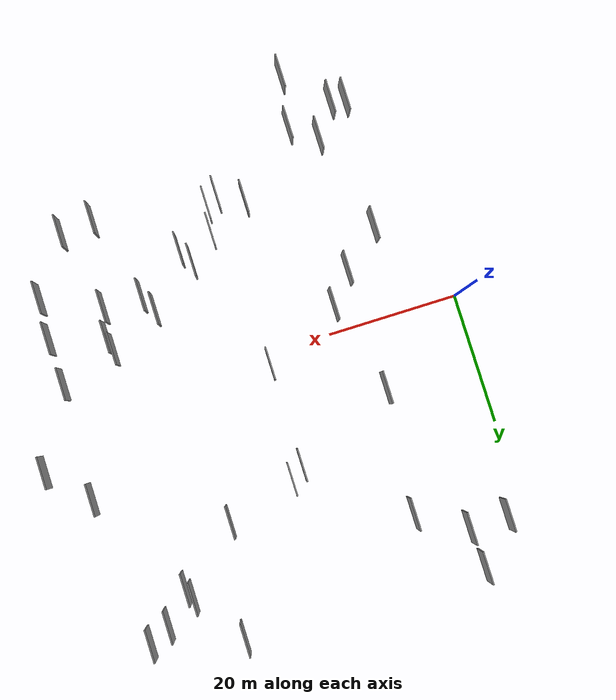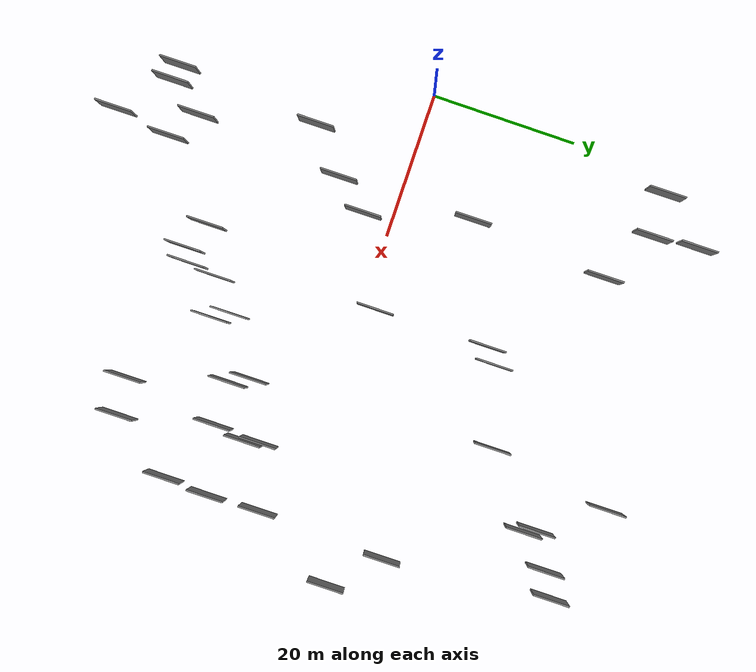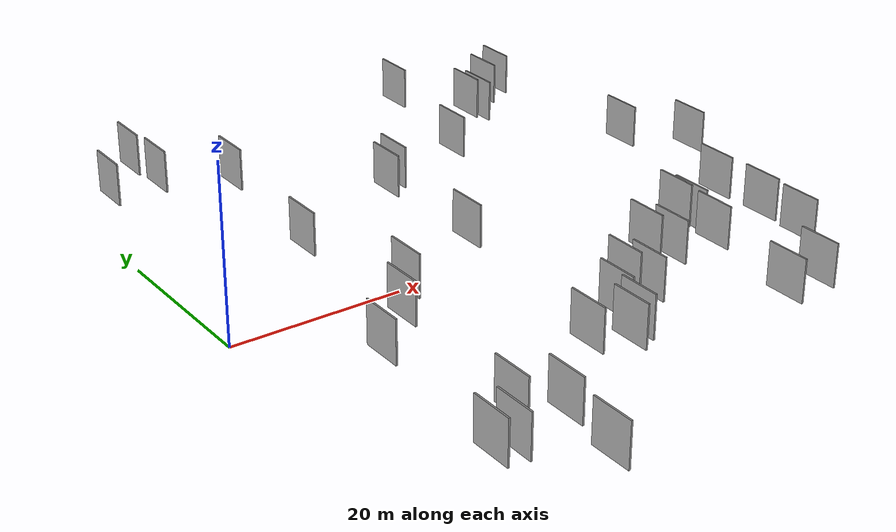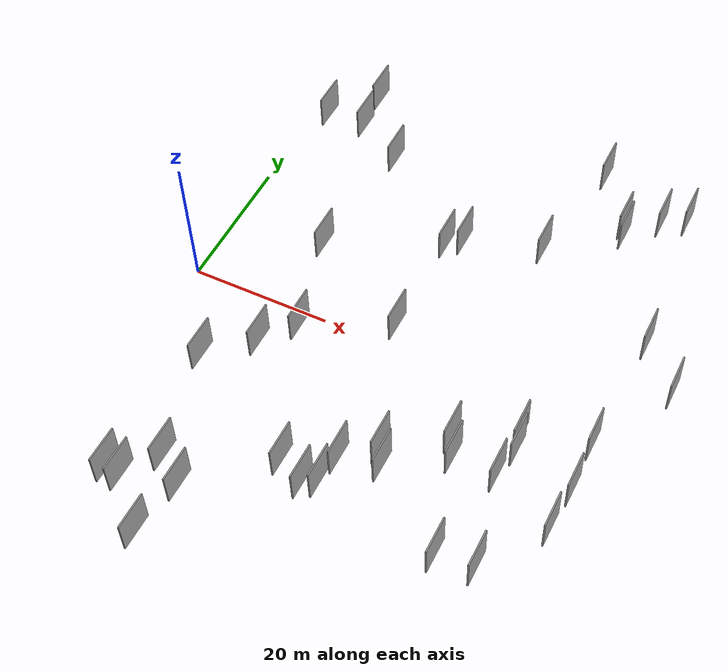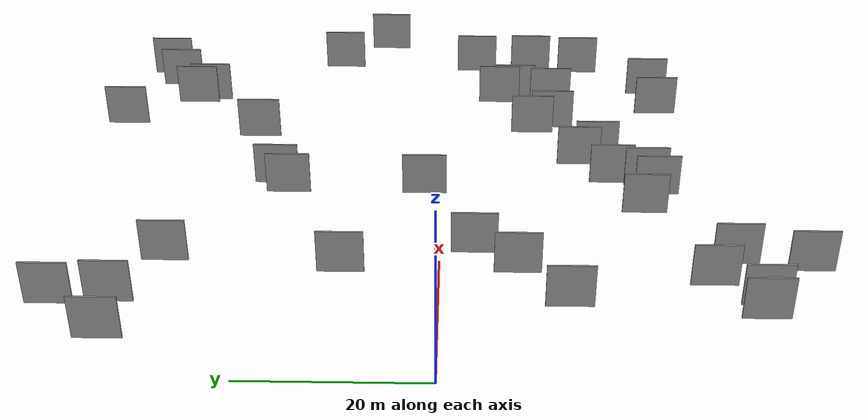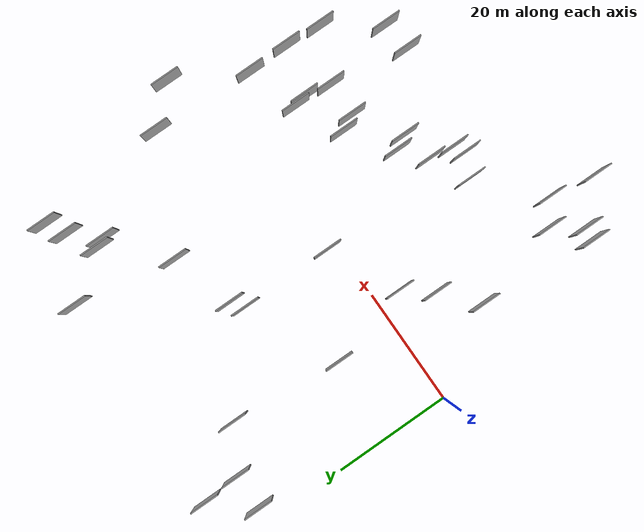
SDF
<sdf version="1.6">
 <world name="default">
  <scene>
   <sky><clouds><speed>12</speed></clouds></sky>
   <ambient>0.4 0.4 0.4 1</ambient>
   <background>0.7 0.7 0.7 1</background>
   <shadows>1</shadows>
  </scene>
  <gravity>0 0 -9.8066</gravity>
  <magnetic_field>6e-06 2.3e-05 -4.2e-05</magnetic_field>
  <physics default="0" name="default_physics" type="ode">
   <ode>
    <solver>
     <type>quick</type>
     <iters>10</iters>
     <sor>1.0</sor>
     <use_dynamic_moi_rescaling>0</use_dynamic_moi_rescaling>
    </solver>
    <constraints>
     <cfm>0</cfm>
     <erp>0.2</erp>
     <contact_max_correcting_vel>100</contact_max_correcting_vel>
     <contact_surface_layer>0.001</contact_surface_layer>
    </constraints>
   </ode>
   <max_step_size>0.004</max_step_size>
   <real_time_factor>1</real_time_factor>
   <real_time_update_rate>250</real_time_update_rate>
  </physics>
  <light name="sun" type="directional">
   <pose>0 0 10 0 0 0</pose>
   <diffuse>0.8 0.8 0.8 1</diffuse>
   <specular>0.2 0.2 0.2 1</specular>
   <attenuation>
    <range>1000</range>
    <constant>0.9</constant>
    <linear>0.01</linear>
    <quadratic>0.001</quadratic>
   </attenuation>
   <direction>-0.5 0.1 -0.9</direction>
  </light>
  <model name="grey_wall_1">
   <static>1</static>
   <pose>26.3463 -22.8614 2.5 0.000000 0.000000 1.570796</pose>
   <link name="link">
    <pose>0 0 2.50 0 0 0</pose>
    <collision name="collision"><geometry><box><size>5.00 0.2 5.00</size></box></geometry></collision>
    <visual name="visual">
     <cast_shadows>0</cast_shadows>
     <geometry><box><size>5.00 0.2 5.00</size></box></geometry>
     <material>
      <script>
       <uri>model://grey_wall/materials/scripts</uri>
       <uri>model://grey_wall/materials/textures</uri>
       <name>vrc/grey_wall</name>
      </script>
     </material>
    </visual>
   </link>
  </model>
  <model name="grey_wall_2">
   <static>1</static>
   <pose>45.1819 -13.5041 2.5 0.000000 0.000000 1.570796</pose>
   <link name="link">
    <pose>0 0 2.50 0 0 0</pose>
    <collision name="collision"><geometry><box><size>5.00 0.2 5.00</size></box></geometry></collision>
    <visual name="visual">
     <cast_shadows>0</cast_shadows>
     <geometry><box><size>5.00 0.2 5.00</size></box></geometry>
     <material>
      <script>
       <uri>model://grey_wall/materials/scripts</uri>
       <uri>model://grey_wall/materials/textures</uri>
       <name>vrc/grey_wall</name>
      </script>
     </material>
    </visual>
   </link>
  </model>
  <model name="grey_wall_3">
   <static>1</static>
   <pose>16.3982 29.0219 2.5 0.000000 0.000000 1.570796</pose>
   <link name="link">
    <pose>0 0 2.50 0 0 0</pose>
    <collision name="collision"><geometry><box><size>5.00 0.2 5.00</size></box></geometry></collision>
    <visual name="visual">
     <cast_shadows>0</cast_shadows>
     <geometry><box><size>5.00 0.2 5.00</size></box></geometry>
     <material>
      <script>
       <uri>model://grey_wall/materials/scripts</uri>
       <uri>model://grey_wall/materials/textures</uri>
       <name>vrc/grey_wall</name>
      </script>
     </material>
    </visual>
   </link>
  </model>
  <model name="grey_wall_4">
   <static>1</static>
   <pose>51.0853 -13.5674 2.5 0.000000 0.000000 1.570796</pose>
   <link name="link">
    <pose>0 0 2.50 0 0 0</pose>
    <collision name="collision"><geometry><box><size>5.00 0.2 5.00</size></box></geometry></collision>
    <visual name="visual">
     <cast_shadows>0</cast_shadows>
     <geometry><box><size>5.00 0.2 5.00</size></box></geometry>
     <material>
      <script>
       <uri>model://grey_wall/materials/scripts</uri>
       <uri>model://grey_wall/materials/textures</uri>
       <name>vrc/grey_wall</name>
      </script>
     </material>
    </visual>
   </link>
  </model>
  <model name="grey_wall_5">
   <static>1</static>
   <pose>66.3828 7.2035 2.5 0.000000 0.000000 1.570796</pose>
   <link name="link">
    <pose>0 0 2.50 0 0 0</pose>
    <collision name="collision"><geometry><box><size>5.00 0.2 5.00</size></box></geometry></collision>
    <visual name="visual">
     <cast_shadows>0</cast_shadows>
     <geometry><box><size>5.00 0.2 5.00</size></box></geometry>
     <material>
      <script>
       <uri>model://grey_wall/materials/scripts</uri>
       <uri>model://grey_wall/materials/textures</uri>
       <name>vrc/grey_wall</name>
      </script>
     </material>
    </visual>
   </link>
  </model>
  <model name="grey_wall_6">
   <static>1</static>
   <pose>31.9685 -23.6078 2.5 0.000000 0.000000 1.570796</pose>
   <link name="link">
    <pose>0 0 2.50 0 0 0</pose>
    <collision name="collision"><geometry><box><size>5.00 0.2 5.00</size></box></geometry></collision>
    <visual name="visual">
     <cast_shadows>0</cast_shadows>
     <geometry><box><size>5.00 0.2 5.00</size></box></geometry>
     <material>
      <script>
       <uri>model://grey_wall/materials/scripts</uri>
       <uri>model://grey_wall/materials/textures</uri>
       <name>vrc/grey_wall</name>
      </script>
     </material>
    </visual>
   </link>
  </model>
  <model name="grey_wall_7">
   <static>1</static>
   <pose>15.6620 -39.1368 2.5 0.000000 0.000000 1.570796</pose>
   <link name="link">
    <pose>0 0 2.50 0 0 0</pose>
    <collision name="collision"><geometry><box><size>5.00 0.2 5.00</size></box></geometry></collision>
    <visual name="visual">
     <cast_shadows>0</cast_shadows>
     <geometry><box><size>5.00 0.2 5.00</size></box></geometry>
     <material>
      <script>
       <uri>model://grey_wall/materials/scripts</uri>
       <uri>model://grey_wall/materials/textures</uri>
       <name>vrc/grey_wall</name>
      </script>
     </material>
    </visual>
   </link>
  </model>
  <model name="grey_wall_8">
   <static>1</static>
   <pose>59.7446 -17.5631 2.5 0.000000 0.000000 1.570796</pose>
   <link name="link">
    <pose>0 0 2.50 0 0 0</pose>
    <collision name="collision"><geometry><box><size>5.00 0.2 5.00</size></box></geometry></collision>
    <visual name="visual">
     <cast_shadows>0</cast_shadows>
     <geometry><box><size>5.00 0.2 5.00</size></box></geometry>
     <material>
      <script>
       <uri>model://grey_wall/materials/scripts</uri>
       <uri>model://grey_wall/materials/textures</uri>
       <name>vrc/grey_wall</name>
      </script>
     </material>
    </visual>
   </link>
  </model>
  <model name="grey_wall_9">
   <static>1</static>
   <pose>29.9235 17.3483 2.5 0.000000 0.000000 1.570796</pose>
   <link name="link">
    <pose>0 0 2.50 0 0 0</pose>
    <collision name="collision"><geometry><box><size>5.00 0.2 5.00</size></box></geometry></collision>
    <visual name="visual">
     <cast_shadows>0</cast_shadows>
     <geometry><box><size>5.00 0.2 5.00</size></box></geometry>
     <material>
      <script>
       <uri>model://grey_wall/materials/scripts</uri>
       <uri>model://grey_wall/materials/textures</uri>
       <name>vrc/grey_wall</name>
      </script>
     </material>
    </visual>
   </link>
  </model>
  <model name="grey_wall_10">
   <static>1</static>
   <pose>60.0062 -4.3715 2.5 0.000000 0.000000 1.570796</pose>
   <link name="link">
    <pose>0 0 2.50 0 0 0</pose>
    <collision name="collision"><geometry><box><size>5.00 0.2 5.00</size></box></geometry></collision>
    <visual name="visual">
     <cast_shadows>0</cast_shadows>
     <geometry><box><size>5.00 0.2 5.00</size></box></geometry>
     <material>
      <script>
       <uri>model://grey_wall/materials/scripts</uri>
       <uri>model://grey_wall/materials/textures</uri>
       <name>vrc/grey_wall</name>
      </script>
     </material>
    </visual>
   </link>
  </model>
  <model name="grey_wall_11">
   <static>1</static>
   <pose>50.7910 31.0676 2.5 0.000000 0.000000 1.570796</pose>
   <link name="link">
    <pose>0 0 2.50 0 0 0</pose>
    <collision name="collision"><geometry><box><size>5.00 0.2 5.00</size></box></geometry></collision>
    <visual name="visual">
     <cast_shadows>0</cast_shadows>
     <geometry><box><size>5.00 0.2 5.00</size></box></geometry>
     <material>
      <script>
       <uri>model://grey_wall/materials/scripts</uri>
       <uri>model://grey_wall/materials/textures</uri>
       <name>vrc/grey_wall</name>
      </script>
     </material>
    </visual>
   </link>
  </model>
  <model name="grey_wall_12">
   <static>1</static>
   <pose>45.3002 38.9370 2.5 0.000000 0.000000 1.570796</pose>
   <link name="link">
    <pose>0 0 2.50 0 0 0</pose>
    <collision name="collision"><geometry><box><size>5.00 0.2 5.00</size></box></geometry></collision>
    <visual name="visual">
     <cast_shadows>0</cast_shadows>
     <geometry><box><size>5.00 0.2 5.00</size></box></geometry>
     <material>
      <script>
       <uri>model://grey_wall/materials/scripts</uri>
       <uri>model://grey_wall/materials/textures</uri>
       <name>vrc/grey_wall</name>
      </script>
     </material>
    </visual>
   </link>
  </model>
  <model name="grey_wall_13">
   <static>1</static>
   <pose>14.6495 10.2471 2.5 0.000000 0.000000 1.570796</pose>
   <link name="link">
    <pose>0 0 2.50 0 0 0</pose>
    <collision name="collision"><geometry><box><size>5.00 0.2 5.00</size></box></geometry></collision>
    <visual name="visual">
     <cast_shadows>0</cast_shadows>
     <geometry><box><size>5.00 0.2 5.00</size></box></geometry>
     <material>
      <script>
       <uri>model://grey_wall/materials/scripts</uri>
       <uri>model://grey_wall/materials/textures</uri>
       <name>vrc/grey_wall</name>
      </script>
     </material>
    </visual>
   </link>
  </model>
  <model name="grey_wall_14">
   <static>1</static>
   <pose>48.8698 -26.5970 2.5 0.000000 0.000000 1.570796</pose>
   <link name="link">
    <pose>0 0 2.50 0 0 0</pose>
    <collision name="collision"><geometry><box><size>5.00 0.2 5.00</size></box></geometry></collision>
    <visual name="visual">
     <cast_shadows>0</cast_shadows>
     <geometry><box><size>5.00 0.2 5.00</size></box></geometry>
     <material>
      <script>
       <uri>model://grey_wall/materials/scripts</uri>
       <uri>model://grey_wall/materials/textures</uri>
       <name>vrc/grey_wall</name>
      </script>
     </material>
    </visual>
   </link>
  </model>
  <model name="grey_wall_15">
   <static>1</static>
   <pose>12.9881 -28.6049 2.5 0.000000 0.000000 1.570796</pose>
   <link name="link">
    <pose>0 0 2.50 0 0 0</pose>
    <collision name="collision"><geometry><box><size>5.00 0.2 5.00</size></box></geometry></collision>
    <visual name="visual">
     <cast_shadows>0</cast_shadows>
     <geometry><box><size>5.00 0.2 5.00</size></box></geometry>
     <material>
      <script>
       <uri>model://grey_wall/materials/scripts</uri>
       <uri>model://grey_wall/materials/textures</uri>
       <name>vrc/grey_wall</name>
      </script>
     </material>
    </visual>
   </link>
  </model>
  <model name="grey_wall_16">
   <static>1</static>
   <pose>9.2071 33.3859 2.5 0.000000 0.000000 1.570796</pose>
   <link name="link">
    <pose>0 0 2.50 0 0 0</pose>
    <collision name="collision"><geometry><box><size>5.00 0.2 5.00</size></box></geometry></collision>
    <visual name="visual">
     <cast_shadows>0</cast_shadows>
     <geometry><box><size>5.00 0.2 5.00</size></box></geometry>
     <material>
      <script>
       <uri>model://grey_wall/materials/scripts</uri>
       <uri>model://grey_wall/materials/textures</uri>
       <name>vrc/grey_wall</name>
      </script>
     </material>
    </visual>
   </link>
  </model>
  <model name="grey_wall_17">
   <static>1</static>
   <pose>60.1707 -11.4295 2.5 0.000000 0.000000 1.570796</pose>
   <link name="link">
    <pose>0 0 2.50 0 0 0</pose>
    <collision name="collision"><geometry><box><size>5.00 0.2 5.00</size></box></geometry></collision>
    <visual name="visual">
     <cast_shadows>0</cast_shadows>
     <geometry><box><size>5.00 0.2 5.00</size></box></geometry>
     <material>
      <script>
       <uri>model://grey_wall/materials/scripts</uri>
       <uri>model://grey_wall/materials/textures</uri>
       <name>vrc/grey_wall</name>
      </script>
     </material>
    </visual>
   </link>
  </model>
  <model name="grey_wall_18">
   <static>1</static>
   <pose>9.1684 -13.4231 2.5 0.000000 0.000000 1.570796</pose>
   <link name="link">
    <pose>0 0 2.50 0 0 0</pose>
    <collision name="collision"><geometry><box><size>5.00 0.2 5.00</size></box></geometry></collision>
    <visual name="visual">
     <cast_shadows>0</cast_shadows>
     <geometry><box><size>5.00 0.2 5.00</size></box></geometry>
     <material>
      <script>
       <uri>model://grey_wall/materials/scripts</uri>
       <uri>model://grey_wall/materials/textures</uri>
       <name>vrc/grey_wall</name>
      </script>
     </material>
    </visual>
   </link>
  </model>
  <model name="grey_wall_19">
   <static>1</static>
   <pose>7.5199 -32.9563 2.5 0.000000 0.000000 1.570796</pose>
   <link name="link">
    <pose>0 0 2.50 0 0 0</pose>
    <collision name="collision"><geometry><box><size>5.00 0.2 5.00</size></box></geometry></collision>
    <visual name="visual">
     <cast_shadows>0</cast_shadows>
     <geometry><box><size>5.00 0.2 5.00</size></box></geometry>
     <material>
      <script>
       <uri>model://grey_wall/materials/scripts</uri>
       <uri>model://grey_wall/materials/textures</uri>
       <name>vrc/grey_wall</name>
      </script>
     </material>
    </visual>
   </link>
  </model>
  <model name="grey_wall_20">
   <static>1</static>
   <pose>51.4443 -7.1435 2.5 0.000000 0.000000 1.570796</pose>
   <link name="link">
    <pose>0 0 2.50 0 0 0</pose>
    <collision name="collision"><geometry><box><size>5.00 0.2 5.00</size></box></geometry></collision>
    <visual name="visual">
     <cast_shadows>0</cast_shadows>
     <geometry><box><size>5.00 0.2 5.00</size></box></geometry>
     <material>
      <script>
       <uri>model://grey_wall/materials/scripts</uri>
       <uri>model://grey_wall/materials/textures</uri>
       <name>vrc/grey_wall</name>
      </script>
     </material>
    </visual>
   </link>
  </model>
  <model name="grey_wall_21">
   <static>1</static>
   <pose>37.8477 -18.3822 2.5 0.000000 0.000000 1.570796</pose>
   <link name="link">
    <pose>0 0 2.50 0 0 0</pose>
    <collision name="collision"><geometry><box><size>5.00 0.2 5.00</size></box></geometry></collision>
    <visual name="visual">
     <cast_shadows>0</cast_shadows>
     <geometry><box><size>5.00 0.2 5.00</size></box></geometry>
     <material>
      <script>
       <uri>model://grey_wall/materials/scripts</uri>
       <uri>model://grey_wall/materials/textures</uri>
       <name>vrc/grey_wall</name>
      </script>
     </material>
    </visual>
   </link>
  </model>
  <model name="grey_wall_22">
   <static>1</static>
   <pose>51.4952 29.5075 2.5 0.000000 0.000000 1.570796</pose>
   <link name="link">
    <pose>0 0 2.50 0 0 0</pose>
    <collision name="collision"><geometry><box><size>5.00 0.2 5.00</size></box></geometry></collision>
    <visual name="visual">
     <cast_shadows>0</cast_shadows>
     <geometry><box><size>5.00 0.2 5.00</size></box></geometry>
     <material>
      <script>
       <uri>model://grey_wall/materials/scripts</uri>
       <uri>model://grey_wall/materials/textures</uri>
       <name>vrc/grey_wall</name>
      </script>
     </material>
    </visual>
   </link>
  </model>
  <model name="grey_wall_23">
   <static>1</static>
   <pose>14.8369 -8.3337 2.5 0.000000 0.000000 1.570796</pose>
   <link name="link">
    <pose>0 0 2.50 0 0 0</pose>
    <collision name="collision"><geometry><box><size>5.00 0.2 5.00</size></box></geometry></collision>
    <visual name="visual">
     <cast_shadows>0</cast_shadows>
     <geometry><box><size>5.00 0.2 5.00</size></box></geometry>
     <material>
      <script>
       <uri>model://grey_wall/materials/scripts</uri>
       <uri>model://grey_wall/materials/textures</uri>
       <name>vrc/grey_wall</name>
      </script>
     </material>
    </visual>
   </link>
  </model>
  <model name="grey_wall_24">
   <static>1</static>
   <pose>29.9625 1.8071 2.5 0.000000 0.000000 1.570796</pose>
   <link name="link">
    <pose>0 0 2.50 0 0 0</pose>
    <collision name="collision"><geometry><box><size>5.00 0.2 5.00</size></box></geometry></collision>
    <visual name="visual">
     <cast_shadows>0</cast_shadows>
     <geometry><box><size>5.00 0.2 5.00</size></box></geometry>
     <material>
      <script>
       <uri>model://grey_wall/materials/scripts</uri>
       <uri>model://grey_wall/materials/textures</uri>
       <name>vrc/grey_wall</name>
      </script>
     </material>
    </visual>
   </link>
  </model>
  <model name="grey_wall_25">
   <static>1</static>
   <pose>3.3071 33.2354 2.5 0.000000 0.000000 1.570796</pose>
   <link name="link">
    <pose>0 0 2.50 0 0 0</pose>
    <collision name="collision"><geometry><box><size>5.00 0.2 5.00</size></box></geometry></collision>
    <visual name="visual">
     <cast_shadows>0</cast_shadows>
     <geometry><box><size>5.00 0.2 5.00</size></box></geometry>
     <material>
      <script>
       <uri>model://grey_wall/materials/scripts</uri>
       <uri>model://grey_wall/materials/textures</uri>
       <name>vrc/grey_wall</name>
      </script>
     </material>
    </visual>
   </link>
  </model>
  <model name="grey_wall_26">
   <static>1</static>
   <pose>31.9212 18.9102 2.5 0.000000 0.000000 1.570796</pose>
   <link name="link">
    <pose>0 0 2.50 0 0 0</pose>
    <collision name="collision"><geometry><box><size>5.00 0.2 5.00</size></box></geometry></collision>
    <visual name="visual">
     <cast_shadows>0</cast_shadows>
     <geometry><box><size>5.00 0.2 5.00</size></box></geometry>
     <material>
      <script>
       <uri>model://grey_wall/materials/scripts</uri>
       <uri>model://grey_wall/materials/textures</uri>
       <name>vrc/grey_wall</name>
      </script>
     </material>
    </visual>
   </link>
  </model>
  <model name="grey_wall_27">
   <static>1</static>
   <pose>9.7199 -33.2839 2.5 0.000000 0.000000 1.570796</pose>
   <link name="link">
    <pose>0 0 2.50 0 0 0</pose>
    <collision name="collision"><geometry><box><size>5.00 0.2 5.00</size></box></geometry></collision>
    <visual name="visual">
     <cast_shadows>0</cast_shadows>
     <geometry><box><size>5.00 0.2 5.00</size></box></geometry>
     <material>
      <script>
       <uri>model://grey_wall/materials/scripts</uri>
       <uri>model://grey_wall/materials/textures</uri>
       <name>vrc/grey_wall</name>
      </script>
     </material>
    </visual>
   </link>
  </model>
  <model name="grey_wall_28">
   <static>1</static>
   <pose>55.4301 33.8588 2.5 0.000000 0.000000 1.570796</pose>
   <link name="link">
    <pose>0 0 2.50 0 0 0</pose>
    <collision name="collision"><geometry><box><size>5.00 0.2 5.00</size></box></geometry></collision>
    <visual name="visual">
     <cast_shadows>0</cast_shadows>
     <geometry><box><size>5.00 0.2 5.00</size></box></geometry>
     <material>
      <script>
       <uri>model://grey_wall/materials/scripts</uri>
       <uri>model://grey_wall/materials/textures</uri>
       <name>vrc/grey_wall</name>
      </script>
     </material>
    </visual>
   </link>
  </model>
  <model name="grey_wall_29">
   <static>1</static>
   <pose>18.3645 -3.8008 2.5 0.000000 0.000000 1.570796</pose>
   <link name="link">
    <pose>0 0 2.50 0 0 0</pose>
    <collision name="collision"><geometry><box><size>5.00 0.2 5.00</size></box></geometry></collision>
    <visual name="visual">
     <cast_shadows>0</cast_shadows>
     <geometry><box><size>5.00 0.2 5.00</size></box></geometry>
     <material>
      <script>
       <uri>model://grey_wall/materials/scripts</uri>
       <uri>model://grey_wall/materials/textures</uri>
       <name>vrc/grey_wall</name>
      </script>
     </material>
    </visual>
   </link>
  </model>
  <model name="grey_wall_30">
   <static>1</static>
   <pose>16.8824 -31.4488 2.5 0.000000 0.000000 1.570796</pose>
   <link name="link">
    <pose>0 0 2.50 0 0 0</pose>
    <collision name="collision"><geometry><box><size>5.00 0.2 5.00</size></box></geometry></collision>
    <visual name="visual">
     <cast_shadows>0</cast_shadows>
     <geometry><box><size>5.00 0.2 5.00</size></box></geometry>
     <material>
      <script>
       <uri>model://grey_wall/materials/scripts</uri>
       <uri>model://grey_wall/materials/textures</uri>
       <name>vrc/grey_wall</name>
      </script>
     </material>
    </visual>
   </link>
  </model>
  <model name="grey_wall_31">
   <static>1</static>
   <pose>8.7586 39.4330 2.5 0.000000 0.000000 1.570796</pose>
   <link name="link">
    <pose>0 0 2.50 0 0 0</pose>
    <collision name="collision"><geometry><box><size>5.00 0.2 5.00</size></box></geometry></collision>
    <visual name="visual">
     <cast_shadows>0</cast_shadows>
     <geometry><box><size>5.00 0.2 5.00</size></box></geometry>
     <material>
      <script>
       <uri>model://grey_wall/materials/scripts</uri>
       <uri>model://grey_wall/materials/textures</uri>
       <name>vrc/grey_wall</name>
      </script>
     </material>
    </visual>
   </link>
  </model>
  <model name="grey_wall_32">
   <static>1</static>
   <pose>32.5348 -19.6754 2.5 0.000000 0.000000 1.570796</pose>
   <link name="link">
    <pose>0 0 2.50 0 0 0</pose>
    <collision name="collision"><geometry><box><size>5.00 0.2 5.00</size></box></geometry></collision>
    <visual name="visual">
     <cast_shadows>0</cast_shadows>
     <geometry><box><size>5.00 0.2 5.00</size></box></geometry>
     <material>
      <script>
       <uri>model://grey_wall/materials/scripts</uri>
       <uri>model://grey_wall/materials/textures</uri>
       <name>vrc/grey_wall</name>
      </script>
     </material>
    </visual>
   </link>
  </model>
  <model name="grey_wall_33">
   <static>1</static>
   <pose>51.8716 -9.1086 2.5 0.000000 0.000000 1.570796</pose>
   <link name="link">
    <pose>0 0 2.50 0 0 0</pose>
    <collision name="collision"><geometry><box><size>5.00 0.2 5.00</size></box></geometry></collision>
    <visual name="visual">
     <cast_shadows>0</cast_shadows>
     <geometry><box><size>5.00 0.2 5.00</size></box></geometry>
     <material>
      <script>
       <uri>model://grey_wall/materials/scripts</uri>
       <uri>model://grey_wall/materials/textures</uri>
       <name>vrc/grey_wall</name>
      </script>
     </material>
    </visual>
   </link>
  </model>
  <model name="grey_wall_34">
   <static>1</static>
   <pose>42.4008 22.2045 2.5 0.000000 0.000000 1.570796</pose>
   <link name="link">
    <pose>0 0 2.50 0 0 0</pose>
    <collision name="collision"><geometry><box><size>5.00 0.2 5.00</size></box></geometry></collision>
    <visual name="visual">
     <cast_shadows>0</cast_shadows>
     <geometry><box><size>5.00 0.2 5.00</size></box></geometry>
     <material>
      <script>
       <uri>model://grey_wall/materials/scripts</uri>
       <uri>model://grey_wall/materials/textures</uri>
       <name>vrc/grey_wall</name>
      </script>
     </material>
    </visual>
   </link>
  </model>
  <model name="grey_wall_35">
   <static>1</static>
   <pose>53.9236 -26.0248 2.5 0.000000 0.000000 1.570796</pose>
   <link name="link">
    <pose>0 0 2.50 0 0 0</pose>
    <collision name="collision"><geometry><box><size>5.00 0.2 5.00</size></box></geometry></collision>
    <visual name="visual">
     <cast_shadows>0</cast_shadows>
     <geometry><box><size>5.00 0.2 5.00</size></box></geometry>
     <material>
      <script>
       <uri>model://grey_wall/materials/scripts</uri>
       <uri>model://grey_wall/materials/textures</uri>
       <name>vrc/grey_wall</name>
      </script>
     </material>
    </visual>
   </link>
  </model>
  <model name="grey_wall_36">
   <static>1</static>
   <pose>36.5457 -16.1759 2.5 0.000000 0.000000 1.570796</pose>
   <link name="link">
    <pose>0 0 2.50 0 0 0</pose>
    <collision name="collision"><geometry><box><size>5.00 0.2 5.00</size></box></geometry></collision>
    <visual name="visual">
     <cast_shadows>0</cast_shadows>
     <geometry><box><size>5.00 0.2 5.00</size></box></geometry>
     <material>
      <script>
       <uri>model://grey_wall/materials/scripts</uri>
       <uri>model://grey_wall/materials/textures</uri>
       <name>vrc/grey_wall</name>
      </script>
     </material>
    </visual>
   </link>
  </model>
  <model name="grey_wall_37">
   <static>1</static>
   <pose>60.7889 13.0609 2.5 0.000000 0.000000 1.570796</pose>
   <link name="link">
    <pose>0 0 2.50 0 0 0</pose>
    <collision name="collision"><geometry><box><size>5.00 0.2 5.00</size></box></geometry></collision>
    <visual name="visual">
     <cast_shadows>0</cast_shadows>
     <geometry><box><size>5.00 0.2 5.00</size></box></geometry>
     <material>
      <script>
       <uri>model://grey_wall/materials/scripts</uri>
       <uri>model://grey_wall/materials/textures</uri>
       <name>vrc/grey_wall</name>
      </script>
     </material>
    </visual>
   </link>
  </model>
  <model name="grey_wall_38">
   <static>1</static>
   <pose>43.8700 -11.0029 2.5 0.000000 0.000000 1.570796</pose>
   <link name="link">
    <pose>0 0 2.50 0 0 0</pose>
    <collision name="collision"><geometry><box><size>5.00 0.2 5.00</size></box></geometry></collision>
    <visual name="visual">
     <cast_shadows>0</cast_shadows>
     <geometry><box><size>5.00 0.2 5.00</size></box></geometry>
     <material>
      <script>
       <uri>model://grey_wall/materials/scripts</uri>
       <uri>model://grey_wall/materials/textures</uri>
       <name>vrc/grey_wall</name>
      </script>
     </material>
    </visual>
   </link>
  </model>
  <model name="grey_wall_39">
   <static>1</static>
   <pose>30.1518 -24.6474 2.5 0.000000 0.000000 1.570796</pose>
   <link name="link">
    <pose>0 0 2.50 0 0 0</pose>
    <collision name="collision"><geometry><box><size>5.00 0.2 5.00</size></box></geometry></collision>
    <visual name="visual">
     <cast_shadows>0</cast_shadows>
     <geometry><box><size>5.00 0.2 5.00</size></box></geometry>
     <material>
      <script>
       <uri>model://grey_wall/materials/scripts</uri>
       <uri>model://grey_wall/materials/textures</uri>
       <name>vrc/grey_wall</name>
      </script>
     </material>
    </visual>
   </link>
  </model>
  <model name="grey_wall_40">
   <static>1</static>
   <pose>58.6459 35.6246 2.5 0.000000 0.000000 1.570796</pose>
   <link name="link">
    <pose>0 0 2.50 0 0 0</pose>
    <collision name="collision"><geometry><box><size>5.00 0.2 5.00</size></box></geometry></collision>
    <visual name="visual">
     <cast_shadows>0</cast_shadows>
     <geometry><box><size>5.00 0.2 5.00</size></box></geometry>
     <material>
      <script>
       <uri>model://grey_wall/materials/scripts</uri>
       <uri>model://grey_wall/materials/textures</uri>
       <name>vrc/grey_wall</name>
      </script>
     </material>
    </visual>
   </link>
  </model>
 </world>
</sdf>
